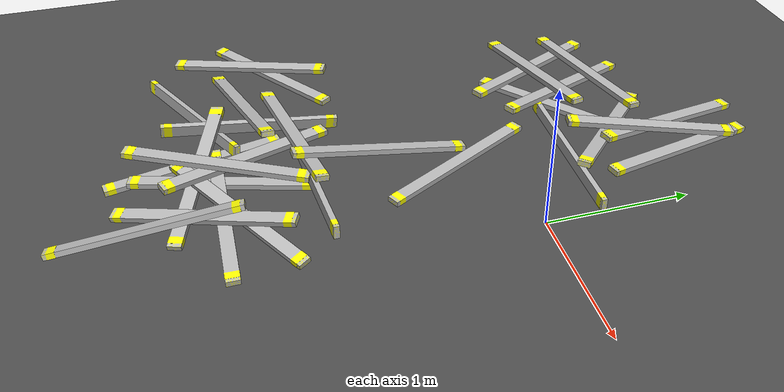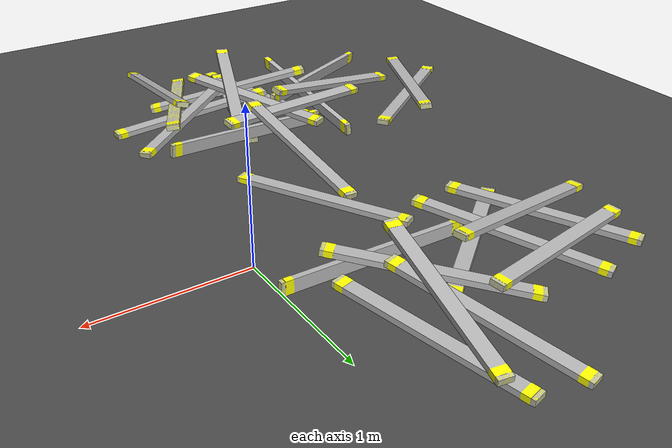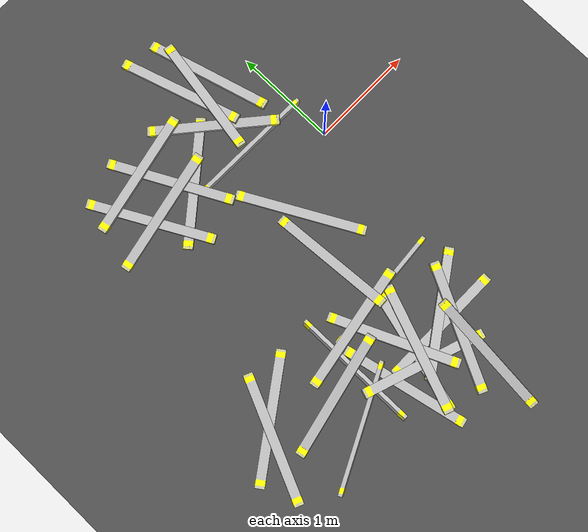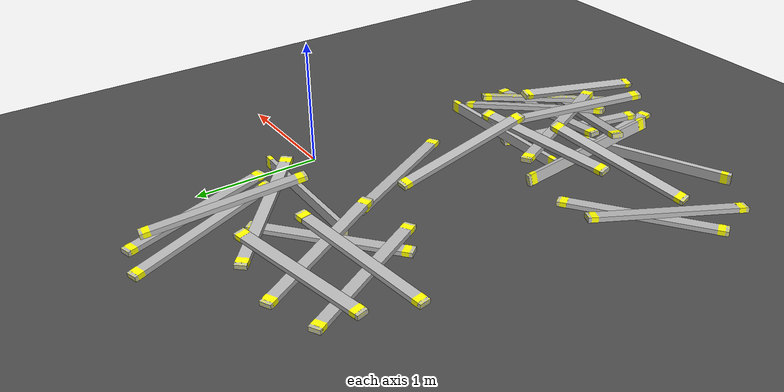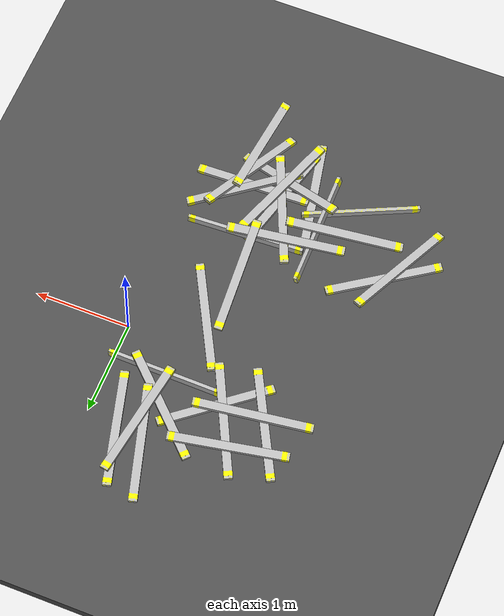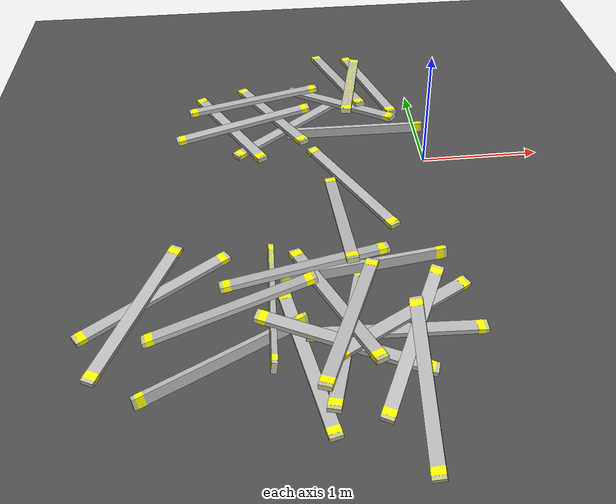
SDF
<sdf version="1.6">
 <world name="default">
  <model name="ground_plane">
   <static>1</static>
   <link name="link">
    <collision name="collision">
     <geometry><plane><normal>0 0 1</normal><size>100 100</size></plane></geometry>
     <surface><friction><ode><mu>100</mu><mu2>50</mu2></ode></friction></surface>
    </collision>
    <visual name="visual">
     <cast_shadows>0</cast_shadows>
     <geometry><plane><normal>0 0 1</normal><size>100 100</size></plane></geometry>
     <material>
      <script><uri>file://media/materials/scripts/gazebo.material</uri><name>Gazebo/Grey</name></script>
     </material>
    </visual>
   </link>
  </model>
  <model name="asphalt_plane">
   <static>1</static>
   <link name="link">
    <collision name="collision"><geometry><box><size>20 20 0.1</size></box></geometry></collision>
    <visual name="visual">
     <cast_shadows>0</cast_shadows>
     <geometry><box><size>20 20 0.1</size></box></geometry>
     <material>
      <script>
       <uri>model://asphalt_plane/materials/scripts</uri>
       <uri>model://asphalt_plane/materials/textures</uri>
       <name>vrc/asphalt</name>
      </script>
     </material>
    </visual>
   </link>
   <pose>0.013797 -0.037077 0 0 -0 0</pose>
  </model>
  <model name="lumber_2x4x48_clone">
   <link name="link">
    <inertial>
     <mass>1.4111</mass>
     <inertia><ixx>0.0011</ixx><ixy>0</ixy><ixz>0</ixz><iyy>0.1771</iyy><iyz>0</iyz><izz>0.1763</izz></inertia>
    </inertial>
    <collision name="collision">
     <geometry><box><size>1.2192 0.038 0.0888</size></box></geometry>
     <surface>
      <bounce><restitution_coefficient>0.01</restitution_coefficient><threshold>5</threshold></bounce>
      <friction><ode><mu>5</mu><mu2>5</mu2></ode></friction>
      <contact>
       <ode>
        <soft_cfm>0.001</soft_cfm>
        <kp>10000</kp>
        <kd>1000</kd>
        <max_vel>0.01</max_vel>
        <min_depth>0.001</min_depth>
       </ode>
      </contact>
     </surface>
    </collision>
    <visual name="visual">
     <geometry><mesh><uri>model://drc_practice_2x4/meshes/2x4x48.dae</uri><scale>1 1 1</scale></mesh></geometry>
    </visual>
   </link>
   <pose>-0.564865 0.384685 0.092497 -0.00633 -0.000867 -0.013678</pose>
  </model>
  <model name="lumber_2x4x48_clone_3_clone">
   <link name="link">
    <inertial>
     <mass>1.4111</mass>
     <inertia><ixx>0.0011</ixx><ixy>0</ixy><ixz>0</ixz><iyy>0.1771</iyy><iyz>0</iyz><izz>0.1763</izz></inertia>
    </inertial>
    <collision name="collision">
     <geometry><box><size>1.2192 0.038 0.0888</size></box></geometry>
     <surface>
      <bounce><restitution_coefficient>0.01</restitution_coefficient><threshold>5</threshold></bounce>
      <friction><ode><mu>5</mu><mu2>5</mu2></ode></friction>
      <contact>
       <ode>
        <soft_cfm>0.001</soft_cfm>
        <kp>10000</kp>
        <kd>1000</kd>
        <max_vel>0.01</max_vel>
        <min_depth>0.001</min_depth>
       </ode>
      </contact>
     </surface>
    </collision>
    <visual name="visual">
     <geometry><mesh><uri>model://drc_practice_2x4/meshes/2x4x48.dae</uri><scale>1 1 1</scale></mesh></geometry>
    </visual>
   </link>
   <pose>-0.673726 0.750853 0.148282 1.57831 -0.133137 -0.743554</pose>
  </model>
  <model name="lumber_2x4x48_clone_3_clone_0_clone_1">
   <link name="link">
    <inertial>
     <mass>1.4111</mass>
     <inertia><ixx>0.0011</ixx><ixy>0</ixy><ixz>0</ixz><iyy>0.1771</iyy><iyz>0</iyz><izz>0.1763</izz></inertia>
    </inertial>
    <collision name="collision">
     <geometry><box><size>1.2192 0.038 0.0888</size></box></geometry>
     <surface>
      <bounce><restitution_coefficient>0.01</restitution_coefficient><threshold>5</threshold></bounce>
      <friction><ode><mu>5</mu><mu2>5</mu2></ode></friction>
      <contact>
       <ode>
        <soft_cfm>0.001</soft_cfm>
        <kp>10000</kp>
        <kd>1000</kd>
        <max_vel>0.01</max_vel>
        <min_depth>0.001</min_depth>
       </ode>
      </contact>
     </surface>
    </collision>
    <visual name="visual">
     <geometry><mesh><uri>model://drc_practice_2x4/meshes/2x4x48.dae</uri><scale>1 1 1</scale></mesh></geometry>
    </visual>
   </link>
   <pose>-0.537635 0.992086 0.203444 1.59269 0.14477 1.39058</pose>
  </model>
  <model name="lumber_2x4x48_clone_1_clone">
   <link name="link">
    <inertial>
     <mass>1.4111</mass>
     <inertia><ixx>0.0011</ixx><ixy>0</ixy><ixz>0</ixz><iyy>0.1771</iyy><iyz>0</iyz><izz>0.1763</izz></inertia>
    </inertial>
    <collision name="collision">
     <geometry><box><size>1.2192 0.038 0.0888</size></box></geometry>
     <surface>
      <bounce><restitution_coefficient>0.01</restitution_coefficient><threshold>5</threshold></bounce>
      <friction><ode><mu>5</mu><mu2>5</mu2></ode></friction>
      <contact>
       <ode>
        <soft_cfm>0.001</soft_cfm>
        <kp>10000</kp>
        <kd>1000</kd>
        <max_vel>0.01</max_vel>
        <min_depth>0.001</min_depth>
       </ode>
      </contact>
     </surface>
    </collision>
    <visual name="visual">
     <geometry><mesh><uri>model://drc_practice_2x4/meshes/2x4x48.dae</uri><scale>1 1 1</scale></mesh></geometry>
    </visual>
   </link>
   <pose>-0.552942 -1.96494 0.104293 -1.58759 0.059449 0.00118</pose>
  </model>
  <model name="lumber_2x4x48_clone_3_clone_0_clone_0_clone">
   <link name="link">
    <inertial>
     <mass>1.4111</mass>
     <inertia><ixx>0.0011</ixx><ixy>0</ixy><ixz>0</ixz><iyy>0.1771</iyy><iyz>0</iyz><izz>0.1763</izz></inertia>
    </inertial>
    <collision name="collision">
     <geometry><box><size>1.2192 0.038 0.0888</size></box></geometry>
     <surface>
      <bounce><restitution_coefficient>0.01</restitution_coefficient><threshold>5</threshold></bounce>
      <friction><ode><mu>5</mu><mu2>5</mu2></ode></friction>
      <contact>
       <ode>
        <soft_cfm>0.001</soft_cfm>
        <kp>10000</kp>
        <kd>1000</kd>
        <max_vel>0.01</max_vel>
        <min_depth>0.001</min_depth>
       </ode>
      </contact>
     </surface>
    </collision>
    <visual name="visual">
     <geometry><mesh><uri>model://drc_practice_2x4/meshes/2x4x48.dae</uri><scale>1 1 1</scale></mesh></geometry>
    </visual>
   </link>
   <pose>-0.489897 -1.87819 0.143044 1.68641 0.121701 0.59385</pose>
  </model>
  <model name="lumber_2x4x48_clone_3_clone_0_clone_0_clone_0_clone">
   <link name="link">
    <inertial>
     <mass>1.4111</mass>
     <inertia><ixx>0.0011</ixx><ixy>0</ixy><ixz>0</ixz><iyy>0.1771</iyy><iyz>0</iyz><izz>0.1763</izz></inertia>
    </inertial>
    <collision name="collision">
     <geometry><box><size>1.2192 0.038 0.0888</size></box></geometry>
     <surface>
      <bounce><restitution_coefficient>0.01</restitution_coefficient><threshold>5</threshold></bounce>
      <friction><ode><mu>5</mu><mu2>5</mu2></ode></friction>
      <contact>
       <ode>
        <soft_cfm>0.001</soft_cfm>
        <kp>10000</kp>
        <kd>1000</kd>
        <max_vel>0.01</max_vel>
        <min_depth>0.001</min_depth>
       </ode>
      </contact>
     </surface>
    </collision>
    <visual name="visual">
     <geometry><mesh><uri>model://drc_practice_2x4/meshes/2x4x48.dae</uri><scale>1 1 1</scale></mesh></geometry>
    </visual>
   </link>
   <pose>-0.909497 -2.08421 0.173666 1.59096 -0.177794 2.812</pose>
  </model>
  <model name="lumber_2x4x48_clone_0_clone">
   <link name="link">
    <inertial>
     <mass>1.4111</mass>
     <inertia><ixx>0.0011</ixx><ixy>0</ixy><ixz>0</ixz><iyy>0.1771</iyy><iyz>0</iyz><izz>0.1763</izz></inertia>
    </inertial>
    <collision name="collision">
     <geometry><box><size>1.2192 0.038 0.0888</size></box></geometry>
     <surface>
      <bounce><restitution_coefficient>0.01</restitution_coefficient><threshold>5</threshold></bounce>
      <friction><ode><mu>5</mu><mu2>5</mu2></ode></friction>
      <contact>
       <ode>
        <soft_cfm>0.001</soft_cfm>
        <kp>10000</kp>
        <kd>1000</kd>
        <max_vel>0.01</max_vel>
        <min_depth>0.001</min_depth>
       </ode>
      </contact>
     </surface>
    </collision>
    <visual name="visual">
     <geometry><mesh><uri>model://drc_practice_2x4/meshes/2x4x48.dae</uri><scale>1 1 1</scale></mesh></geometry>
    </visual>
   </link>
   <pose>-0.704637 -1.37135 0.130377 -0.066842 -0.057249 0.080753</pose>
  </model>
  <model name="lumber_2x4x48_clone_3_clone_0_clone_1_clone">
   <link name="link">
    <inertial>
     <mass>1.4111</mass>
     <inertia><ixx>0.0011</ixx><ixy>0</ixy><ixz>0</ixz><iyy>0.1771</iyy><iyz>0</iyz><izz>0.1763</izz></inertia>
    </inertial>
    <collision name="collision">
     <geometry><box><size>1.2192 0.038 0.0888</size></box></geometry>
     <surface>
      <bounce><restitution_coefficient>0.01</restitution_coefficient><threshold>5</threshold></bounce>
      <friction><ode><mu>5</mu><mu2>5</mu2></ode></friction>
      <contact>
       <ode>
        <soft_cfm>0.001</soft_cfm>
        <kp>10000</kp>
        <kd>1000</kd>
        <max_vel>0.01</max_vel>
        <min_depth>0.001</min_depth>
       </ode>
      </contact>
     </surface>
    </collision>
    <visual name="visual">
     <geometry><mesh><uri>model://drc_practice_2x4/meshes/2x4x48.dae</uri><scale>1 1 1</scale></mesh></geometry>
    </visual>
   </link>
   <pose>-0.878629 -1.94435 0.085464 1.56486 0.03174 1.31313</pose>
  </model>
  <model name="lumber_2x4x48_clone_3_clone_0_clone_1_clone_clone_1">
   <link name="link">
    <inertial>
     <mass>1.4111</mass>
     <inertia><ixx>0.0011</ixx><ixy>0</ixy><ixz>0</ixz><iyy>0.1771</iyy><iyz>0</iyz><izz>0.1763</izz></inertia>
    </inertial>
    <collision name="collision">
     <geometry><box><size>1.2192 0.038 0.0888</size></box></geometry>
     <surface>
      <bounce><restitution_coefficient>0.01</restitution_coefficient><threshold>5</threshold></bounce>
      <friction><ode><mu>5</mu><mu2>5</mu2></ode></friction>
      <contact>
       <ode>
        <soft_cfm>0.001</soft_cfm>
        <kp>10000</kp>
        <kd>1000</kd>
        <max_vel>0.01</max_vel>
        <min_depth>0.001</min_depth>
       </ode>
      </contact>
     </surface>
    </collision>
    <visual name="visual">
     <geometry><mesh><uri>model://drc_practice_2x4/meshes/2x4x48.dae</uri><scale>1 1 1</scale></mesh></geometry>
    </visual>
   </link>
   <pose>-1.37068 -1.68549 0.167427 -2.97353 0.119506 1.56713</pose>
  </model>
  <model name="lumber_2x4x48_clone_3_clone_0_clone_1_clone_clone_2">
   <link name="link">
    <inertial>
     <mass>1.4111</mass>
     <inertia><ixx>0.0011</ixx><ixy>0</ixy><ixz>0</ixz><iyy>0.1771</iyy><iyz>0</iyz><izz>0.1763</izz></inertia>
    </inertial>
    <collision name="collision">
     <geometry><box><size>1.2192 0.038 0.0888</size></box></geometry>
     <surface>
      <bounce><restitution_coefficient>0.01</restitution_coefficient><threshold>5</threshold></bounce>
      <friction><ode><mu>5</mu><mu2>5</mu2></ode></friction>
      <contact>
       <ode>
        <soft_cfm>0.001</soft_cfm>
        <kp>10000</kp>
        <kd>1000</kd>
        <max_vel>0.01</max_vel>
        <min_depth>0.001</min_depth>
       </ode>
      </contact>
     </surface>
    </collision>
    <visual name="visual">
     <geometry><mesh><uri>model://drc_practice_2x4/meshes/2x4x48.dae</uri><scale>1 1 1</scale></mesh></geometry>
    </visual>
   </link>
   <pose>-1.69037 -2.07872 0.107785 -0.143223 -0.022011 0.459193</pose>
  </model>
  <model name="lumber_2x4x48_clone_3_clone_0_clone_clone">
   <link name="link">
    <inertial>
     <mass>1.4111</mass>
     <inertia><ixx>0.0011</ixx><ixy>0</ixy><ixz>0</ixz><iyy>0.1771</iyy><iyz>0</iyz><izz>0.1763</izz></inertia>
    </inertial>
    <collision name="collision">
     <geometry><box><size>1.2192 0.038 0.0888</size></box></geometry>
     <surface>
      <bounce><restitution_coefficient>0.01</restitution_coefficient><threshold>5</threshold></bounce>
      <friction><ode><mu>5</mu><mu2>5</mu2></ode></friction>
      <contact>
       <ode>
        <soft_cfm>0.001</soft_cfm>
        <kp>10000</kp>
        <kd>1000</kd>
        <max_vel>0.01</max_vel>
        <min_depth>0.001</min_depth>
       </ode>
      </contact>
     </surface>
    </collision>
    <visual name="visual">
     <geometry><mesh><uri>model://drc_practice_2x4/meshes/2x4x48.dae</uri><scale>1 1 1</scale></mesh></geometry>
    </visual>
   </link>
   <pose>-2.18032 -1.45176 0.067309 1.57859 -0.000151 0.618251</pose>
  </model>
  <model name="lumber_2x4x48_clone_3_clone_0_clone_1_clone_clone_4">
   <link name="link">
    <inertial>
     <mass>1.4111</mass>
     <inertia><ixx>0.0011</ixx><ixy>0</ixy><ixz>0</ixz><iyy>0.1771</iyy><iyz>0</iyz><izz>0.1763</izz></inertia>
    </inertial>
    <collision name="collision">
     <geometry><box><size>1.2192 0.038 0.0888</size></box></geometry>
     <surface>
      <bounce><restitution_coefficient>0.01</restitution_coefficient><threshold>5</threshold></bounce>
      <friction><ode><mu>5</mu><mu2>5</mu2></ode></friction>
      <contact>
       <ode>
        <soft_cfm>0.001</soft_cfm>
        <kp>10000</kp>
        <kd>1000</kd>
        <max_vel>0.01</max_vel>
        <min_depth>0.001</min_depth>
       </ode>
      </contact>
     </surface>
    </collision>
    <visual name="visual">
     <geometry><mesh><uri>model://drc_practice_2x4/meshes/2x4x48.dae</uri><scale>1 1 1</scale></mesh></geometry>
    </visual>
   </link>
   <pose>-1.15883 0.514235 0.067235 1.56243 -0.000502 0.690625</pose>
  </model>
  <model name="lumber_2x4x48_clone_3_clone_0_clone_clone_0_clone_0">
   <link name="link">
    <inertial>
     <mass>1.4111</mass>
     <inertia><ixx>0.0011</ixx><ixy>0</ixy><ixz>0</ixz><iyy>0.1771</iyy><iyz>0</iyz><izz>0.1763</izz></inertia>
    </inertial>
    <collision name="collision">
     <geometry><box><size>1.2192 0.038 0.0888</size></box></geometry>
     <surface>
      <bounce><restitution_coefficient>0.01</restitution_coefficient><threshold>5</threshold></bounce>
      <friction><ode><mu>5</mu><mu2>5</mu2></ode></friction>
      <contact>
       <ode>
        <soft_cfm>0.001</soft_cfm>
        <kp>10000</kp>
        <kd>1000</kd>
        <max_vel>0.01</max_vel>
        <min_depth>0.001</min_depth>
       </ode>
      </contact>
     </surface>
    </collision>
    <visual name="visual">
     <geometry><mesh><uri>model://drc_practice_2x4/meshes/2x4x48.dae</uri><scale>1 1 1</scale></mesh></geometry>
    </visual>
   </link>
   <pose>-0.953536 -1.75316 0.202947 -1.64823 -0.078184 -1.15548</pose>
  </model>
  <model name="lumber_2x4x48_clone_3_clone_0_clone_clone_0_clone_0_clone_0">
   <link name="link">
    <inertial>
     <mass>1.4111</mass>
     <inertia><ixx>0.0011</ixx><ixy>0</ixy><ixz>0</ixz><iyy>0.1771</iyy><iyz>0</iyz><izz>0.1763</izz></inertia>
    </inertial>
    <collision name="collision">
     <geometry><box><size>1.2192 0.038 0.0888</size></box></geometry>
     <surface>
      <bounce><restitution_coefficient>0.01</restitution_coefficient><threshold>5</threshold></bounce>
      <friction><ode><mu>5</mu><mu2>5</mu2></ode></friction>
      <contact>
       <ode>
        <soft_cfm>0.001</soft_cfm>
        <kp>10000</kp>
        <kd>1000</kd>
        <max_vel>0.01</max_vel>
        <min_depth>0.001</min_depth>
       </ode>
      </contact>
     </surface>
    </collision>
    <visual name="visual">
     <geometry><mesh><uri>model://drc_practice_2x4/meshes/2x4x48.dae</uri><scale>1 1 1</scale></mesh></geometry>
    </visual>
   </link>
   <pose>-0.823774 -0.876853 0.183074 -1.49482 -0.186042 -1.52375</pose>
  </model>
  <model name="lumber_2x4x48_clone_3_clone_0_clone_clone_0_clone_0_clone_2">
   <link name="link">
    <inertial>
     <mass>1.4111</mass>
     <inertia><ixx>0.0011</ixx><ixy>0</ixy><ixz>0</ixz><iyy>0.1771</iyy><iyz>0</iyz><izz>0.1763</izz></inertia>
    </inertial>
    <collision name="collision">
     <geometry><box><size>1.2192 0.038 0.0888</size></box></geometry>
     <surface>
      <bounce><restitution_coefficient>0.01</restitution_coefficient><threshold>5</threshold></bounce>
      <friction><ode><mu>5</mu><mu2>5</mu2></ode></friction>
      <contact>
       <ode>
        <soft_cfm>0.001</soft_cfm>
        <kp>10000</kp>
        <kd>1000</kd>
        <max_vel>0.01</max_vel>
        <min_depth>0.001</min_depth>
       </ode>
      </contact>
     </surface>
    </collision>
    <visual name="visual">
     <geometry><mesh><uri>model://drc_practice_2x4/meshes/2x4x48.dae</uri><scale>1 1 1</scale></mesh></geometry>
    </visual>
   </link>
   <pose>-1.16404 -2.10259 0.065722 -1.54848 -0.00079 -1.35512</pose>
  </model>
  <model name="lumber_2x4x48_clone_3_clone_0_clone_clone_0_clone_0_clone_3">
   <link name="link">
    <inertial>
     <mass>1.4111</mass>
     <inertia><ixx>0.0011</ixx><ixy>0</ixy><ixz>0</ixz><iyy>0.1771</iyy><iyz>0</iyz><izz>0.1763</izz></inertia>
    </inertial>
    <collision name="collision">
     <geometry><box><size>1.2192 0.038 0.0888</size></box></geometry>
     <surface>
      <bounce><restitution_coefficient>0.01</restitution_coefficient><threshold>5</threshold></bounce>
      <friction><ode><mu>5</mu><mu2>5</mu2></ode></friction>
      <contact>
       <ode>
        <soft_cfm>0.001</soft_cfm>
        <kp>10000</kp>
        <kd>1000</kd>
        <max_vel>0.01</max_vel>
        <min_depth>0.001</min_depth>
       </ode>
      </contact>
     </surface>
    </collision>
    <visual name="visual">
     <geometry><mesh><uri>model://drc_practice_2x4/meshes/2x4x48.dae</uri><scale>1 1 1</scale></mesh></geometry>
    </visual>
   </link>
   <pose>-0.359114 1.13213 0.108723 -1.58557 -0.066582 -1.31087</pose>
  </model>
  <model name="lumber_2x4x48_clone_3_clone_0_clone_clone_0_clone_0_clone_6">
   <link name="link">
    <inertial>
     <mass>1.4111</mass>
     <inertia><ixx>0.0011</ixx><ixy>0</ixy><ixz>0</ixz><iyy>0.1771</iyy><iyz>0</iyz><izz>0.1763</izz></inertia>
    </inertial>
    <collision name="collision">
     <geometry><box><size>1.2192 0.038 0.0888</size></box></geometry>
     <surface>
      <bounce><restitution_coefficient>0.01</restitution_coefficient><threshold>5</threshold></bounce>
      <friction><ode><mu>5</mu><mu2>5</mu2></ode></friction>
      <contact>
       <ode>
        <soft_cfm>0.001</soft_cfm>
        <kp>10000</kp>
        <kd>1000</kd>
        <max_vel>0.01</max_vel>
        <min_depth>0.001</min_depth>
       </ode>
      </contact>
     </surface>
    </collision>
    <visual name="visual">
     <geometry><mesh><uri>model://drc_practice_2x4/meshes/2x4x48.dae</uri><scale>1 1 1</scale></mesh></geometry>
    </visual>
   </link>
   <pose>-1.68201 0.538783 0.09031 -1.5615 -0.037272 -1.08115</pose>
  </model>
  <model name="lumber_2x4x48_clone_3_clone_0_clone_clone_0_clone_0_clone_7">
   <link name="link">
    <inertial>
     <mass>1.4111</mass>
     <inertia><ixx>0.0011</ixx><ixy>0</ixy><ixz>0</ixz><iyy>0.1771</iyy><iyz>0</iyz><izz>0.1763</izz></inertia>
    </inertial>
    <collision name="collision">
     <geometry><box><size>1.2192 0.038 0.0888</size></box></geometry>
     <surface>
      <bounce><restitution_coefficient>0.01</restitution_coefficient><threshold>5</threshold></bounce>
      <friction><ode><mu>5</mu><mu2>5</mu2></ode></friction>
      <contact>
       <ode>
        <soft_cfm>0.001</soft_cfm>
        <kp>10000</kp>
        <kd>1000</kd>
        <max_vel>0.01</max_vel>
        <min_depth>0.001</min_depth>
       </ode>
      </contact>
     </surface>
    </collision>
    <visual name="visual">
     <geometry><mesh><uri>model://drc_practice_2x4/meshes/2x4x48.dae</uri><scale>1 1 1</scale></mesh></geometry>
    </visual>
   </link>
   <pose>-1.30556 0.664283 0.124344 -1.55717 -0.094005 -1.10548</pose>
  </model>
  <model name="lumber_2x4x48_clone_3_clone_0_clone_clone_0_clone_0_clone_0_clone">
   <link name="link">
    <inertial>
     <mass>1.4111</mass>
     <inertia><ixx>0.0011</ixx><ixy>0</ixy><ixz>0</ixz><iyy>0.1771</iyy><iyz>0</iyz><izz>0.1763</izz></inertia>
    </inertial>
    <collision name="collision">
     <geometry><box><size>1.2192 0.038 0.0888</size></box></geometry>
     <surface>
      <bounce><restitution_coefficient>0.01</restitution_coefficient><threshold>5</threshold></bounce>
      <friction><ode><mu>5</mu><mu2>5</mu2></ode></friction>
      <contact>
       <ode>
        <soft_cfm>0.001</soft_cfm>
        <kp>10000</kp>
        <kd>1000</kd>
        <max_vel>0.01</max_vel>
        <min_depth>0.001</min_depth>
       </ode>
      </contact>
     </surface>
    </collision>
    <visual name="visual">
     <geometry><mesh><uri>model://drc_practice_2x4/meshes/2x4x48.dae</uri><scale>1 1 1</scale></mesh></geometry>
    </visual>
   </link>
   <pose>-0.685407 -0.367017 0.067655 -1.5708 0 -1.07615</pose>
  </model>
  <model name="lumber_2x4x48_clone_3_clone_0_clone_clone_0_clone_0_clone_9">
   <link name="link">
    <inertial>
     <mass>1.4111</mass>
     <inertia><ixx>0.0011</ixx><ixy>0</ixy><ixz>0</ixz><iyy>0.1771</iyy><iyz>0</iyz><izz>0.1763</izz></inertia>
    </inertial>
    <collision name="collision">
     <geometry><box><size>1.2192 0.038 0.0888</size></box></geometry>
     <surface>
      <bounce><restitution_coefficient>0.01</restitution_coefficient><threshold>5</threshold></bounce>
      <friction><ode><mu>5</mu><mu2>5</mu2></ode></friction>
      <contact>
       <ode>
        <soft_cfm>0.001</soft_cfm>
        <kp>10000</kp>
        <kd>1000</kd>
        <max_vel>0.01</max_vel>
        <min_depth>0.001</min_depth>
       </ode>
      </contact>
     </surface>
    </collision>
    <visual name="visual">
     <geometry><mesh><uri>model://drc_practice_2x4/meshes/2x4x48.dae</uri><scale>1 1 1</scale></mesh></geometry>
    </visual>
   </link>
   <pose>-0.65047 1.19845 0.140834 -1.57901 -0.120981 -1.29436</pose>
  </model>
  <model name="lumber_2x4x48_clone_3_clone_0_clone_clone_0_clone_0_clone_11_clone_0">
   <link name="link">
    <inertial>
     <mass>1.4111</mass>
     <inertia><ixx>0.0011</ixx><ixy>0</ixy><ixz>0</ixz><iyy>0.1771</iyy><iyz>0</iyz><izz>0.1763</izz></inertia>
    </inertial>
    <collision name="collision">
     <geometry><box><size>1.2192 0.038 0.0888</size></box></geometry>
     <surface>
      <bounce><restitution_coefficient>0.01</restitution_coefficient><threshold>5</threshold></bounce>
      <friction><ode><mu>5</mu><mu2>5</mu2></ode></friction>
      <contact>
       <ode>
        <soft_cfm>0.001</soft_cfm>
        <kp>10000</kp>
        <kd>1000</kd>
        <max_vel>0.01</max_vel>
        <min_depth>0.001</min_depth>
       </ode>
      </contact>
     </surface>
    </collision>
    <visual name="visual">
     <geometry><mesh><uri>model://drc_practice_2x4/meshes/2x4x48.dae</uri><scale>1 1 1</scale></mesh></geometry>
    </visual>
   </link>
   <pose>-0.864642 -1.95507 0.256696 1.58081 -0.099892 -1.94084</pose>
  </model>
  <model name="lumber_2x4x48_clone_3_clone_0_clone_clone_0_clone_0_clone_11_clone_3">
   <link name="link">
    <inertial>
     <mass>1.4111</mass>
     <inertia><ixx>0.0011</ixx><ixy>0</ixy><ixz>0</ixz><iyy>0.1771</iyy><iyz>0</iyz><izz>0.1763</izz></inertia>
    </inertial>
    <collision name="collision">
     <geometry><box><size>1.2192 0.038 0.0888</size></box></geometry>
     <surface>
      <bounce><restitution_coefficient>0.01</restitution_coefficient><threshold>5</threshold></bounce>
      <friction><ode><mu>5</mu><mu2>5</mu2></ode></friction>
      <contact>
       <ode>
        <soft_cfm>0.001</soft_cfm>
        <kp>10000</kp>
        <kd>1000</kd>
        <max_vel>0.01</max_vel>
        <min_depth>0.001</min_depth>
       </ode>
      </contact>
     </surface>
    </collision>
    <visual name="visual">
     <geometry><mesh><uri>model://drc_practice_2x4/meshes/2x4x48.dae</uri><scale>1 1 1</scale></mesh></geometry>
    </visual>
   </link>
   <pose>-0.456076 -2.42536 0.162698 -1.33076 0.140153 -1.63301</pose>
  </model>
  <model name="lumber_2x4x48_clone_3_clone_0_clone_clone_0_clone_0_clone_11_clone_4">
   <link name="link">
    <inertial>
     <mass>1.4111</mass>
     <inertia><ixx>0.0011</ixx><ixy>0</ixy><ixz>0</ixz><iyy>0.1771</iyy><iyz>0</iyz><izz>0.1763</izz></inertia>
    </inertial>
    <collision name="collision">
     <geometry><box><size>1.2192 0.038 0.0888</size></box></geometry>
     <surface>
      <bounce><restitution_coefficient>0.01</restitution_coefficient><threshold>5</threshold></bounce>
      <friction><ode><mu>5</mu><mu2>5</mu2></ode></friction>
      <contact>
       <ode>
        <soft_cfm>0.001</soft_cfm>
        <kp>10000</kp>
        <kd>1000</kd>
        <max_vel>0.01</max_vel>
        <min_depth>0.001</min_depth>
       </ode>
      </contact>
     </surface>
    </collision>
    <visual name="visual">
     <geometry><mesh><uri>model://drc_practice_2x4/meshes/2x4x48.dae</uri><scale>1 1 1</scale></mesh></geometry>
    </visual>
   </link>
   <pose>-0.47052 -2.08282 0.163338 -1.6852 0.105678 -2.01424</pose>
  </model>
  <model name="lumber_2x4x48_clone_3_clone_0_clone_clone_0_clone_0_clone_11_clone_14_clone_clone_3">
   <link name="link">
    <inertial>
     <mass>1.4111</mass>
     <inertia><ixx>0.0011</ixx><ixy>0</ixy><ixz>0</ixz><iyy>0.1771</iyy><iyz>0</iyz><izz>0.1763</izz></inertia>
    </inertial>
    <collision name="collision">
     <geometry><box><size>1.2192 0.038 0.0888</size></box></geometry>
     <surface>
      <bounce><restitution_coefficient>0.01</restitution_coefficient><threshold>5</threshold></bounce>
      <friction><ode><mu>5</mu><mu2>5</mu2></ode></friction>
      <contact>
       <ode>
        <soft_cfm>0.001</soft_cfm>
        <kp>10000</kp>
        <kd>1000</kd>
        <max_vel>0.01</max_vel>
        <min_depth>0.001</min_depth>
       </ode>
      </contact>
     </surface>
    </collision>
    <visual name="visual">
     <geometry><mesh><uri>model://drc_practice_2x4/meshes/2x4x48.dae</uri><scale>1 1 1</scale></mesh></geometry>
    </visual>
   </link>
   <pose>-1.55151 0.511691 0.143792 1.57659 0.108543 -2.9491</pose>
  </model>
  <model name="lumber_2x4x48_clone_3_clone_0_clone_clone_0_clone_0_clone_11_clone_14_clone_clone_4">
   <link name="link">
    <inertial>
     <mass>1.4111</mass>
     <inertia><ixx>0.0011</ixx><ixy>0</ixy><ixz>0</ixz><iyy>0.1771</iyy><iyz>0</iyz><izz>0.1763</izz></inertia>
    </inertial>
    <collision name="collision">
     <geometry><box><size>1.2192 0.038 0.0888</size></box></geometry>
     <surface>
      <bounce><restitution_coefficient>0.01</restitution_coefficient><threshold>5</threshold></bounce>
      <friction><ode><mu>5</mu><mu2>5</mu2></ode></friction>
      <contact>
       <ode>
        <soft_cfm>0.001</soft_cfm>
        <kp>10000</kp>
        <kd>1000</kd>
        <max_vel>0.01</max_vel>
        <min_depth>0.001</min_depth>
       </ode>
      </contact>
     </surface>
    </collision>
    <visual name="visual">
     <geometry><mesh><uri>model://drc_practice_2x4/meshes/2x4x48.dae</uri><scale>1 1 1</scale></mesh></geometry>
    </visual>
   </link>
   <pose>-1.64659 -1.72587 0.181102 1.7313 0.176667 -2.91735</pose>
  </model>
  <model name="lumber_2x4x48_clone_3_clone_0_clone_clone_0_clone_0_clone_11_clone_14_clone_clone_5">
   <link name="link">
    <inertial>
     <mass>1.4111</mass>
     <inertia><ixx>0.0011</ixx><ixy>0</ixy><ixz>0</ixz><iyy>0.1771</iyy><iyz>0</iyz><izz>0.1763</izz></inertia>
    </inertial>
    <collision name="collision">
     <geometry><box><size>1.2192 0.038 0.0888</size></box></geometry>
     <surface>
      <bounce><restitution_coefficient>0.01</restitution_coefficient><threshold>5</threshold></bounce>
      <friction><ode><mu>5</mu><mu2>5</mu2></ode></friction>
      <contact>
       <ode>
        <soft_cfm>0.001</soft_cfm>
        <kp>10000</kp>
        <kd>1000</kd>
        <max_vel>0.01</max_vel>
        <min_depth>0.001</min_depth>
       </ode>
      </contact>
     </surface>
    </collision>
    <visual name="visual">
     <geometry><mesh><uri>model://drc_practice_2x4/meshes/2x4x48.dae</uri><scale>1 1 1</scale></mesh></geometry>
    </visual>
   </link>
   <pose>-1.12377 -1.42787 0.221758 1.75951 0.053481 -2.96792</pose>
  </model>
  <model name="lumber_2x4x48_clone_3_clone_0_clone_clone_0_clone_0_clone_11_clone_14_clone_clone_8">
   <link name="link">
    <inertial>
     <mass>1.4111</mass>
     <inertia><ixx>0.0011</ixx><ixy>0</ixy><ixz>0</ixz><iyy>0.1771</iyy><iyz>0</iyz><izz>0.1763</izz></inertia>
    </inertial>
    <collision name="collision">
     <geometry><box><size>1.2192 0.038 0.0888</size></box></geometry>
     <surface>
      <bounce><restitution_coefficient>0.01</restitution_coefficient><threshold>5</threshold></bounce>
      <friction><ode><mu>5</mu><mu2>5</mu2></ode></friction>
      <contact>
       <ode>
        <soft_cfm>0.001</soft_cfm>
        <kp>10000</kp>
        <kd>1000</kd>
        <max_vel>0.01</max_vel>
        <min_depth>0.001</min_depth>
       </ode>
      </contact>
     </surface>
    </collision>
    <visual name="visual">
     <geometry><mesh><uri>model://drc_practice_2x4/meshes/2x4x48.dae</uri><scale>1 1 1</scale></mesh></geometry>
    </visual>
   </link>
   <pose>-1.45554 0.913539 0.133109 1.65834 0.037662 -2.93008</pose>
  </model>
  <model name="lumber_2x4x48_clone_3_clone_0_clone_clone_0_clone_0_clone_11_clone_clone_0">
   <link name="link">
    <inertial>
     <mass>1.4111</mass>
     <inertia><ixx>0.0011</ixx><ixy>0</ixy><ixz>0</ixz><iyy>0.1771</iyy><iyz>0</iyz><izz>0.1763</izz></inertia>
    </inertial>
    <collision name="collision">
     <geometry><box><size>1.2192 0.038 0.0888</size></box></geometry>
     <surface>
      <bounce><restitution_coefficient>0.01</restitution_coefficient><threshold>5</threshold></bounce>
      <friction><ode><mu>5</mu><mu2>5</mu2></ode></friction>
      <contact>
       <ode>
        <soft_cfm>0.001</soft_cfm>
        <kp>10000</kp>
        <kd>1000</kd>
        <max_vel>0.01</max_vel>
        <min_depth>0.001</min_depth>
       </ode>
      </contact>
     </surface>
    </collision>
    <visual name="visual">
     <geometry><mesh><uri>model://drc_practice_2x4/meshes/2x4x48.dae</uri><scale>1 1 1</scale></mesh></geometry>
    </visual>
   </link>
   <pose>-2.29317 -1.59685 0.101837 1.48708 0.049643 -1.98908</pose>
  </model>
 </world>
</sdf>
